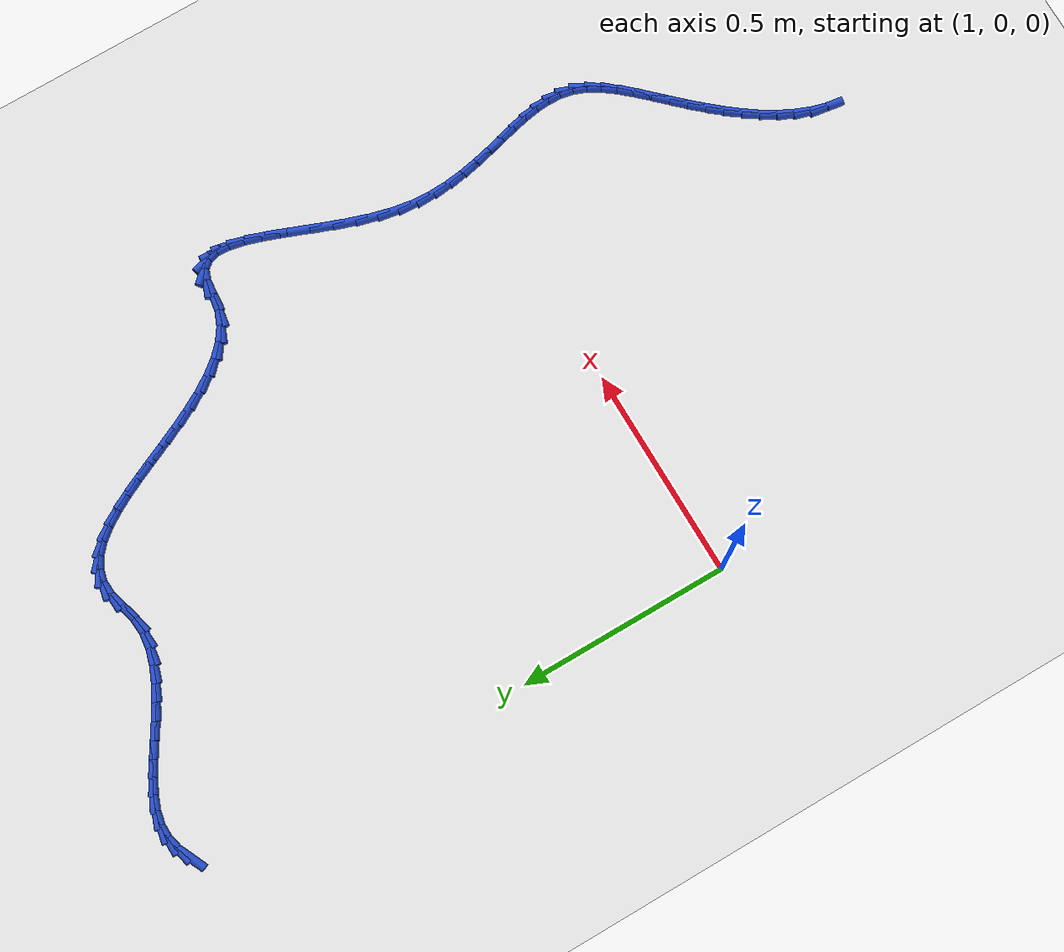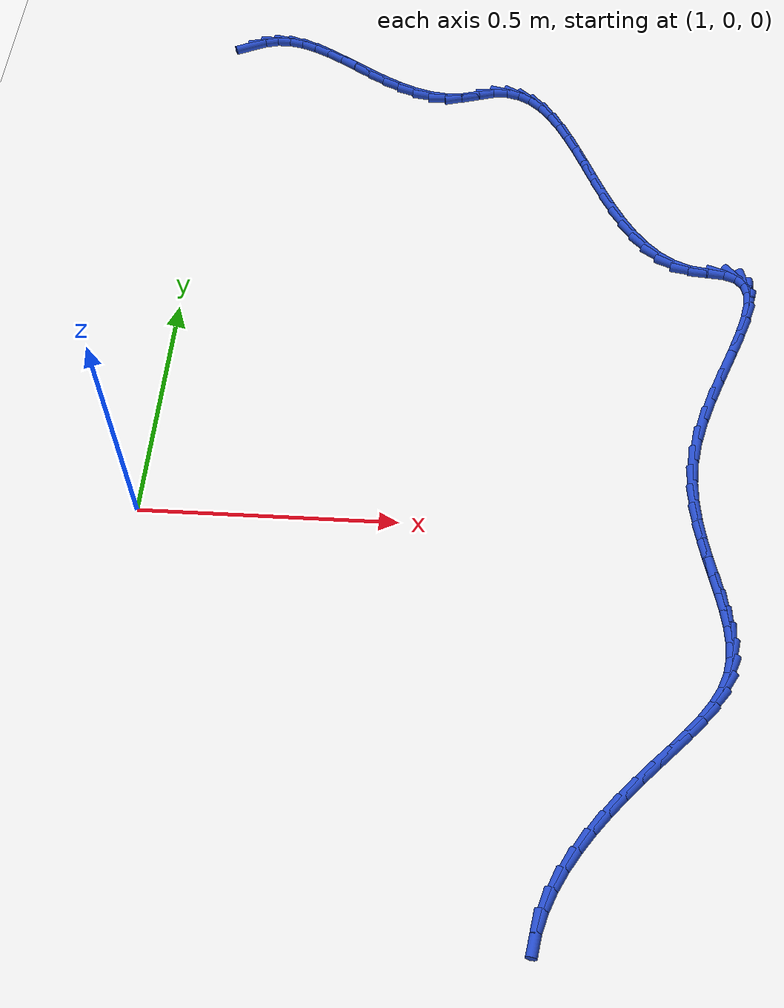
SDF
<sdf version="1.6">
 <world name="default">
  <model name="ground_plane">
   <static>1</static>
   <link name="link">
    <collision name="collision">
     <geometry><plane><normal>0 0 1</normal><size>100 100</size></plane></geometry>
     <surface><friction><ode><mu>100</mu><mu2>50</mu2></ode></friction></surface>
    </collision>
    <visual name="visual">
     <cast_shadows>0</cast_shadows>
     <geometry><plane><normal>0 0 1</normal><size>100 100</size></plane></geometry>
     <material>
      <script><uri>file://media/materials/scripts/gazebo.material</uri><name>Gazebo/WhiteGlow</name></script>
     </material>
    </visual>
   </link>
  </model>
  <model name="line">
   <link name="link_52">
    <pose>1.0448844272359366 1.2996021910996431 0.01 0 1.57 0.429805047557264</pose>
    <collision name="collision">
     <geometry><cylinder><radius>0.01</radius><length>0.08</length></cylinder></geometry>
    </collision>
    <visual name="visual">
     <material>
      <script><name>Gazebo/Blue</name><uri>file://media/materials/scripts/gazebo.material</uri></script>
     </material>
     <geometry><cylinder><radius>0.01</radius><length>0.08</length></cylinder></geometry>
    </visual>
   </link>
   <link name="link_53">
    <pose>1.0741562509220632 1.3130199585511995 0.01 0 1.57 0.23510998479612377</pose>
    <collision name="collision">
     <geometry><cylinder><radius>0.01</radius><length>0.08</length></cylinder></geometry>
    </collision>
    <visual name="visual">
     <material>
      <script><name>Gazebo/Blue</name><uri>file://media/materials/scripts/gazebo.material</uri></script>
     </material>
     <geometry><cylinder><radius>0.01</radius><length>0.08</length></cylinder></geometry>
    </visual>
   </link>
   <link name="link_54">
    <pose>1.1038272987754294 1.3201273612443578 0.01 0 1.57 0.00893521651556636</pose>
    <collision name="collision">
     <geometry><cylinder><radius>0.01</radius><length>0.08</length></cylinder></geometry>
    </collision>
    <visual name="visual">
     <material>
      <script><name>Gazebo/Blue</name><uri>file://media/materials/scripts/gazebo.material</uri></script>
     </material>
     <geometry><cylinder><radius>0.01</radius><length>0.08</length></cylinder></geometry>
    </visual>
   </link>
   <link name="link_55">
    <pose>1.134230710025504 1.3203990295365537 0.01 0 1.57 -0.20590039947856606</pose>
    <collision name="collision">
     <geometry><cylinder><radius>0.01</radius><length>0.08</length></cylinder></geometry>
    </collision>
    <visual name="visual">
     <material>
      <script><name>Gazebo/Blue</name><uri>file://media/materials/scripts/gazebo.material</uri></script>
     </material>
     <geometry><cylinder><radius>0.01</radius><length>0.08</length></cylinder></geometry>
    </visual>
   </link>
   <link name="link_56">
    <pose>1.165576664864631 1.3138521034420758 0.01 0 1.57 -0.36217149226945927</pose>
    <collision name="collision">
     <geometry><cylinder><radius>0.01</radius><length>0.08</length></cylinder></geometry>
    </collision>
    <visual name="visual">
     <material>
      <script><name>Gazebo/Blue</name><uri>file://media/materials/scripts/gazebo.material</uri></script>
     </material>
     <geometry><cylinder><radius>0.01</radius><length>0.08</length></cylinder></geometry>
    </visual>
   </link>
   <link name="link_57">
    <pose>1.197818688309911 1.301636115634664 0.01 0 1.57 -0.46519427115432604</pose>
    <collision name="collision">
     <geometry><cylinder><radius>0.01</radius><length>0.08</length></cylinder></geometry>
    </collision>
    <visual name="visual">
     <material>
      <script><name>Gazebo/Blue</name><uri>file://media/materials/scripts/gazebo.material</uri></script>
     </material>
     <geometry><cylinder><radius>0.01</radius><length>0.08</length></cylinder></geometry>
    </visual>
   </link>
   <link name="link_58">
    <pose>1.230878163191035 1.2850424138792378 0.01 0 1.57 -0.5272879270392726</pose>
    <collision name="collision">
     <geometry><cylinder><radius>0.01</radius><length>0.08</length></cylinder></geometry>
    </collision>
    <visual name="visual">
     <material>
      <script><name>Gazebo/Blue</name><uri>file://media/materials/scripts/gazebo.material</uri></script>
     </material>
     <geometry><cylinder><radius>0.01</radius><length>0.08</length></cylinder></geometry>
    </visual>
   </link>
   <link name="link_59">
    <pose>1.2646764723376946 1.2653623459407153 0.01 0 1.57 -0.5573150228196627</pose>
    <collision name="collision">
     <geometry><cylinder><radius>0.01</radius><length>0.08</length></cylinder></geometry>
    </collision>
    <visual name="visual">
     <material>
      <script><name>Gazebo/Blue</name><uri>file://media/materials/scripts/gazebo.material</uri></script>
     </material>
     <geometry><cylinder><radius>0.01</radius><length>0.08</length></cylinder></geometry>
    </visual>
   </link>
   <link name="link_60">
    <pose>1.299134998579582 1.2438872595840178 0.01 0 1.57 -0.5602123364508486</pose>
    <collision name="collision">
     <geometry><cylinder><radius>0.01</radius><length>0.08</length></cylinder></geometry>
    </collision>
    <visual name="visual">
     <material>
      <script><name>Gazebo/Blue</name><uri>file://media/materials/scripts/gazebo.material</uri></script>
     </material>
     <geometry><cylinder><radius>0.01</radius><length>0.08</length></cylinder></geometry>
    </visual>
   </link>
   <link name="link_61">
    <pose>1.3341751247463887 1.221908502574063 0.01 0 1.57 -0.5376264756287165</pose>
    <collision name="collision">
     <geometry><cylinder><radius>0.01</radius><length>0.08</length></cylinder></geometry>
    </collision>
    <visual name="visual">
     <material>
      <script><name>Gazebo/Blue</name><uri>file://media/materials/scripts/gazebo.material</uri></script>
     </material>
     <geometry><cylinder><radius>0.01</radius><length>0.08</length></cylinder></geometry>
    </visual>
   </link>
   <link name="link_62">
    <pose>1.3697182336678062 1.2007174226757715 0.01 0 1.57 -0.4884279258981313</pose>
    <collision name="collision">
     <geometry><cylinder><radius>0.01</radius><length>0.08</length></cylinder></geometry>
    </collision>
    <visual name="visual">
     <material>
      <script><name>Gazebo/Blue</name><uri>file://media/materials/scripts/gazebo.material</uri></script>
     </material>
     <geometry><cylinder><radius>0.01</radius><length>0.08</length></cylinder></geometry>
    </visual>
   </link>
   <link name="link_63">
    <pose>1.4056857081735268 1.181605367654062 0.01 0 1.57 -0.409045825958524</pose>
    <collision name="collision">
     <geometry><cylinder><radius>0.01</radius><length>0.08</length></cylinder></geometry>
    </collision>
    <visual name="visual">
     <material>
      <script><name>Gazebo/Blue</name><uri>file://media/materials/scripts/gazebo.material</uri></script>
     </material>
     <geometry><cylinder><radius>0.01</radius><length>0.08</length></cylinder></geometry>
    </visual>
   </link>
   <link name="link_64">
    <pose>1.4419989310932413 1.1658636852738549 0.01 0 1.57 -0.29410952521227995</pose>
    <collision name="collision">
     <geometry><cylinder><radius>0.01</radius><length>0.08</length></cylinder></geometry>
    </collision>
    <visual name="visual">
     <material>
      <script><name>Gazebo/Blue</name><uri>file://media/materials/scripts/gazebo.material</uri></script>
     </material>
     <geometry><cylinder><radius>0.01</radius><length>0.08</length></cylinder></geometry>
    </visual>
   </link>
   <link name="link_65">
    <pose>1.478579285256642 1.1547837233000688 0.01 0 1.57 -0.13854247090549057</pose>
    <collision name="collision">
     <geometry><cylinder><radius>0.01</radius><length>0.08</length></cylinder></geometry>
    </collision>
    <visual name="visual">
     <material>
      <script><name>Gazebo/Blue</name><uri>file://media/materials/scripts/gazebo.material</uri></script>
     </material>
     <geometry><cylinder><radius>0.01</radius><length>0.08</length></cylinder></geometry>
    </visual>
   </link>
   <link name="link_66">
    <pose>1.5153481534934206 1.1496568294976233 0.01 0 1.57 0.0573554902370289</pose>
    <collision name="collision">
     <geometry><cylinder><radius>0.01</radius><length>0.08</length></cylinder></geometry>
    </collision>
    <visual name="visual">
     <material>
      <script><name>Gazebo/Blue</name><uri>file://media/materials/scripts/gazebo.material</uri></script>
     </material>
     <geometry><cylinder><radius>0.01</radius><length>0.08</length></cylinder></geometry>
    </visual>
   </link>
   <link name="link_67">
    <pose>1.5522269186332682 1.151774351631438 0.01 0 1.57 0.2560856816084314</pose>
    <collision name="collision">
     <geometry><cylinder><radius>0.01</radius><length>0.08</length></cylinder></geometry>
    </collision>
    <visual name="visual">
     <material>
      <script><name>Gazebo/Blue</name><uri>file://media/materials/scripts/gazebo.material</uri></script>
     </material>
     <geometry><cylinder><radius>0.01</radius><length>0.08</length></cylinder></geometry>
    </visual>
   </link>
   <link name="link_68">
    <pose>1.588977768799128 1.161396994147292 0.01 0 1.57 0.27451396121899535</pose>
    <collision name="collision">
     <geometry><cylinder><radius>0.01</radius><length>0.08</length></cylinder></geometry>
    </collision>
    <visual name="visual">
     <material>
      <script><name>Gazebo/Blue</name><uri>file://media/materials/scripts/gazebo.material</uri></script>
     </material>
     <geometry><cylinder><radius>0.01</radius><length>0.08</length></cylinder></geometry>
    </visual>
   </link>
   <link name="link_69">
    <pose>1.6242096336828566 1.1713191313148255 0.01 0 1.57 0.056286231660913164</pose>
    <collision name="collision">
     <geometry><cylinder><radius>0.01</radius><length>0.08</length></cylinder></geometry>
    </collision>
    <visual name="visual">
     <material>
      <script><name>Gazebo/Blue</name><uri>file://media/materials/scripts/gazebo.material</uri></script>
     </material>
     <geometry><cylinder><radius>0.01</radius><length>0.08</length></cylinder></geometry>
    </visual>
   </link>
   <link name="link_70">
    <pose>1.6564383818019035 1.1731350842337112 0.01 0 1.57 -0.2365649904011344</pose>
    <collision name="collision">
     <geometry><cylinder><radius>0.01</radius><length>0.08</length></cylinder></geometry>
    </collision>
    <visual name="visual">
     <material>
      <script><name>Gazebo/Blue</name><uri>file://media/materials/scripts/gazebo.material</uri></script>
     </material>
     <geometry><cylinder><radius>0.01</radius><length>0.08</length></cylinder></geometry>
    </visual>
   </link>
   <link name="link_71">
    <pose>1.6856986495958262 1.1660810473512058 0.01 0 1.57 -0.5103684415493414</pose>
    <collision name="collision">
     <geometry><cylinder><radius>0.01</radius><length>0.08</length></cylinder></geometry>
    </collision>
    <visual name="visual">
     <material>
      <script><name>Gazebo/Blue</name><uri>file://media/materials/scripts/gazebo.material</uri></script>
     </material>
     <geometry><cylinder><radius>0.01</radius><length>0.08</length></cylinder></geometry>
    </visual>
   </link>
   <link name="link_72">
    <pose>1.7123735418426467 1.1511473080356978 0.01 0 1.57 -0.7282313867077387</pose>
    <collision name="collision">
     <geometry><cylinder><radius>0.01</radius><length>0.08</length></cylinder></geometry>
    </collision>
    <visual name="visual">
     <material>
      <script><name>Gazebo/Blue</name><uri>file://media/materials/scripts/gazebo.material</uri></script>
     </material>
     <geometry><cylinder><radius>0.01</radius><length>0.08</length></cylinder></geometry>
    </visual>
   </link>
   <link name="link_73">
    <pose>1.736846163320386 1.129324153655576 0.01 0 1.57 -0.8856810301193223</pose>
    <collision name="collision">
     <geometry><cylinder><radius>0.01</radius><length>0.08</length></cylinder></geometry>
    </collision>
    <visual name="visual">
     <material>
      <script><name>Gazebo/Blue</name><uri>file://media/materials/scripts/gazebo.material</uri></script>
     </material>
     <geometry><cylinder><radius>0.01</radius><length>0.08</length></cylinder></geometry>
    </visual>
   </link>
   <link name="link_74">
    <pose>1.7594996188070655 1.1016018715792273 0.01 0 1.57 -0.9942667689347339</pose>
    <collision name="collision">
     <geometry><cylinder><radius>0.01</radius><length>0.08</length></cylinder></geometry>
    </collision>
    <visual name="visual">
     <material>
      <script><name>Gazebo/Blue</name><uri>file://media/materials/scripts/gazebo.material</uri></script>
     </material>
     <geometry><cylinder><radius>0.01</radius><length>0.08</length></cylinder></geometry>
    </visual>
   </link>
   <link name="link_75">
    <pose>1.7807170130807057 1.0689707491750409 0.01 0 1.57 -1.0666492493274393</pose>
    <collision name="collision">
     <geometry><cylinder><radius>0.01</radius><length>0.08</length></cylinder></geometry>
    </collision>
    <visual name="visual">
     <material>
      <script><name>Gazebo/Blue</name><uri>file://media/materials/scripts/gazebo.material</uri></script>
     </material>
     <geometry><cylinder><radius>0.01</radius><length>0.08</length></cylinder></geometry>
    </visual>
   </link>
   <link name="link_76">
    <pose>1.800881450919329 1.0324210738114052 0.01 0 1.57 -1.1121132912019904</pose>
    <collision name="collision">
     <geometry><cylinder><radius>0.01</radius><length>0.08</length></cylinder></geometry>
    </collision>
    <visual name="visual">
     <material>
      <script><name>Gazebo/Blue</name><uri>file://media/materials/scripts/gazebo.material</uri></script>
     </material>
     <geometry><cylinder><radius>0.01</radius><length>0.08</length></cylinder></geometry>
    </visual>
   </link>
   <link name="link_77">
    <pose>1.8203760371009559 0.9929431328567068 0.01 0 1.57 -1.136542934846392</pose>
    <collision name="collision">
     <geometry><cylinder><radius>0.01</radius><length>0.08</length></cylinder></geometry>
    </collision>
    <visual name="visual">
     <material>
      <script><name>Gazebo/Blue</name><uri>file://media/materials/scripts/gazebo.material</uri></script>
     </material>
     <geometry><cylinder><radius>0.01</radius><length>0.08</length></cylinder></geometry>
    </visual>
   </link>
   <link name="link_78">
    <pose>1.8395838764036077 0.9515272136793356 0.01 0 1.57 -1.143229990157646</pose>
    <collision name="collision">
     <geometry><cylinder><radius>0.01</radius><length>0.08</length></cylinder></geometry>
    </collision>
    <visual name="visual">
     <material>
      <script><name>Gazebo/Blue</name><uri>file://media/materials/scripts/gazebo.material</uri></script>
     </material>
     <geometry><cylinder><radius>0.01</radius><length>0.08</length></cylinder></geometry>
    </visual>
   </link>
   <link name="link_79">
    <pose>1.8588880736053057 0.9091636036476782 0.01 0 1.57 -1.133512496936239</pose>
    <collision name="collision">
     <geometry><cylinder><radius>0.01</radius><length>0.08</length></cylinder></geometry>
    </collision>
    <visual name="visual">
     <material>
      <script><name>Gazebo/Blue</name><uri>file://media/materials/scripts/gazebo.material</uri></script>
     </material>
     <geometry><cylinder><radius>0.01</radius><length>0.08</length></cylinder></geometry>
    </visual>
   </link>
   <link name="link_80">
    <pose>1.8786717334840712 0.8668425901301244 0.01 0 1.57 -1.1071068176928034</pose>
    <collision name="collision">
     <geometry><cylinder><radius>0.01</radius><length>0.08</length></cylinder></geometry>
    </collision>
    <visual name="visual">
     <material>
      <script><name>Gazebo/Blue</name><uri>file://media/materials/scripts/gazebo.material</uri></script>
     </material>
     <geometry><cylinder><radius>0.01</radius><length>0.08</length></cylinder></geometry>
    </visual>
   </link>
   <link name="link_81">
    <pose>1.899317960817926 0.8255544604950612 0.01 0 1.57 -1.0621804570360798</pose>
    <collision name="collision">
     <geometry><cylinder><radius>0.01</radius><length>0.08</length></cylinder></geometry>
    </collision>
    <visual name="visual">
     <material>
      <script><name>Gazebo/Blue</name><uri>file://media/materials/scripts/gazebo.material</uri></script>
     </material>
     <geometry><cylinder><radius>0.01</radius><length>0.08</length></cylinder></geometry>
    </visual>
   </link>
   <link name="link_82">
    <pose>1.9212098603848902 0.7862895021108772 0.01 0 1.57 -0.9952514963757877</pose>
    <collision name="collision">
     <geometry><cylinder><radius>0.01</radius><length>0.08</length></cylinder></geometry>
    </collision>
    <visual name="visual">
     <material>
      <script><name>Gazebo/Blue</name><uri>file://media/materials/scripts/gazebo.material</uri></script>
     </material>
     <geometry><cylinder><radius>0.01</radius><length>0.08</length></cylinder></geometry>
    </visual>
   </link>
   <link name="link_83">
    <pose>1.9447305369629853 0.7500380023459601 0.01 0 1.57 -0.901098544550212</pose>
    <collision name="collision">
     <geometry><cylinder><radius>0.01</radius><length>0.08</length></cylinder></geometry>
    </collision>
    <visual name="visual">
     <material>
      <script><name>Gazebo/Blue</name><uri>file://media/materials/scripts/gazebo.material</uri></script>
     </material>
     <geometry><cylinder><radius>0.01</radius><length>0.08</length></cylinder></geometry>
    </visual>
   </link>
   <link name="link_84">
    <pose>1.9702630953302323 0.7177902485686987 0.01 0 1.57 -0.7731876600633841</pose>
    <collision name="collision">
     <geometry><cylinder><radius>0.01</radius><length>0.08</length></cylinder></geometry>
    </collision>
    <visual name="visual">
     <material>
      <script><name>Gazebo/Blue</name><uri>file://media/materials/scripts/gazebo.material</uri></script>
     </material>
     <geometry><cylinder><radius>0.01</radius><length>0.08</length></cylinder></geometry>
    </visual>
   </link>
   <link name="link_85">
    <pose>1.9981906402646539 0.6905365281474807 0.01 0 1.57 -0.6058011317473849</pose>
    <collision name="collision">
     <geometry><cylinder><radius>0.01</radius><length>0.08</length></cylinder></geometry>
    </collision>
    <visual name="visual">
     <material>
      <script><name>Gazebo/Blue</name><uri>file://media/materials/scripts/gazebo.material</uri></script>
     </material>
     <geometry><cylinder><radius>0.01</radius><length>0.08</length></cylinder></geometry>
    </visual>
   </link>
   <link name="link_86">
    <pose>2.0288962765442697 0.6692671284506948 0.01 0 1.57 -0.39940177573918967</pose>
    <collision name="collision">
     <geometry><cylinder><radius>0.01</radius><length>0.08</length></cylinder></geometry>
    </collision>
    <visual name="visual">
     <material>
      <script><name>Gazebo/Blue</name><uri>file://media/materials/scripts/gazebo.material</uri></script>
     </material>
     <geometry><cylinder><radius>0.01</radius><length>0.08</length></cylinder></geometry>
    </visual>
   </link>
   <link name="link_87">
    <pose>2.0627631089471015 0.6549723368467284 0.01 0 1.57 -0.17007441226633815</pose>
    <collision name="collision">
     <geometry><cylinder><radius>0.01</radius><length>0.08</length></cylinder></geometry>
    </collision>
    <visual name="visual">
     <material>
      <script><name>Gazebo/Blue</name><uri>file://media/materials/scripts/gazebo.material</uri></script>
     </material>
     <geometry><cylinder><radius>0.01</radius><length>0.08</length></cylinder></geometry>
    </visual>
   </link>
   <link name="link_88">
    <pose>2.100101372638777 0.6485601088254555 0.01 0 1.57 -0.08676398623313394</pose>
    <collision name="collision">
     <geometry><cylinder><radius>0.01</radius><length>0.08</length></cylinder></geometry>
    </collision>
    <visual name="visual">
     <material>
      <script><name>Gazebo/Blue</name><uri>file://media/materials/scripts/gazebo.material</uri></script>
     </material>
     <geometry><cylinder><radius>0.01</radius><length>0.08</length></cylinder></geometry>
    </visual>
   </link>
   <link name="link_89">
    <pose>2.136327761023231 0.6454090519504484 0.01 0 1.57 -0.36391834789815797</pose>
    <collision name="collision">
     <geometry><cylinder><radius>0.01</radius><length>0.08</length></cylinder></geometry>
    </collision>
    <visual name="visual">
     <material>
      <script><name>Gazebo/Blue</name><uri>file://media/materials/scripts/gazebo.material</uri></script>
     </material>
     <geometry><cylinder><radius>0.01</radius><length>0.08</length></cylinder></geometry>
    </visual>
   </link>
   <link name="link_90">
    <pose>2.162348594249542 0.635498159497639 0.01 0 1.57 -0.8463129193081445</pose>
    <collision name="collision">
     <geometry><cylinder><radius>0.01</radius><length>0.08</length></cylinder></geometry>
    </collision>
    <visual name="visual">
     <material>
      <script><name>Gazebo/Blue</name><uri>file://media/materials/scripts/gazebo.material</uri></script>
     </material>
     <geometry><cylinder><radius>0.01</radius><length>0.08</length></cylinder></geometry>
    </visual>
   </link>
   <link name="link_91">
    <pose>2.1778983416320465 0.617928449398913 0.01 0 1.57 -1.3113086702979015</pose>
    <collision name="collision">
     <geometry><cylinder><radius>0.01</radius><length>0.08</length></cylinder></geometry>
    </collision>
    <visual name="visual">
     <material>
      <script><name>Gazebo/Blue</name><uri>file://media/materials/scripts/gazebo.material</uri></script>
     </material>
     <geometry><cylinder><radius>0.01</radius><length>0.08</length></cylinder></geometry>
    </visual>
   </link>
   <link name="link_92">
    <pose>2.184374965463743 0.5935319064398422 0.01 0 1.57 1.5313800111826732</pose>
    <collision name="collision">
     <geometry><cylinder><radius>0.01</radius><length>0.08</length></cylinder></geometry>
    </collision>
    <visual name="visual">
     <material>
      <script><name>Gazebo/Blue</name><uri>file://media/materials/scripts/gazebo.material</uri></script>
     </material>
     <geometry><cylinder><radius>0.01</radius><length>0.08</length></cylinder></geometry>
    </visual>
   </link>
   <link name="link_93">
    <pose>2.1831764280376253 0.563140515405999 0.01 0 1.57 1.3635524640347216</pose>
    <collision name="collision">
     <geometry><cylinder><radius>0.01</radius><length>0.08</length></cylinder></geometry>
    </collision>
    <visual name="visual">
     <material>
      <script><name>Gazebo/Blue</name><uri>file://media/materials/scripts/gazebo.material</uri></script>
     </material>
     <geometry><cylinder><radius>0.01</radius><length>0.08</length></cylinder></geometry>
    </visual>
   </link>
   <link name="link_94">
    <pose>2.17570069164669 0.5275862610829544 0.01 0 1.57 1.270406099410097</pose>
    <collision name="collision">
     <geometry><cylinder><radius>0.01</radius><length>0.08</length></cylinder></geometry>
    </collision>
    <visual name="visual">
     <material>
      <script><name>Gazebo/Blue</name><uri>file://media/materials/scripts/gazebo.material</uri></script>
     </material>
     <geometry><cylinder><radius>0.01</radius><length>0.08</length></cylinder></geometry>
    </visual>
   </link>
   <link name="link_95">
    <pose>2.1633457185839338 0.4877011282562819 0.01 0 1.57 1.2207995499956517</pose>
    <collision name="collision">
     <geometry><cylinder><radius>0.01</radius><length>0.08</length></cylinder></geometry>
    </collision>
    <visual name="visual">
     <material>
      <script><name>Gazebo/Blue</name><uri>file://media/materials/scripts/gazebo.material</uri></script>
     </material>
     <geometry><cylinder><radius>0.01</radius><length>0.08</length></cylinder></geometry>
    </visual>
   </link>
   <link name="link_96">
    <pose>2.147509471142352 0.44431710171155203 0.01 0 1.57 1.1997001630612982</pose>
    <collision name="collision">
     <geometry><cylinder><radius>0.01</radius><length>0.08</length></cylinder></geometry>
    </collision>
    <visual name="visual">
     <material>
      <script><name>Gazebo/Blue</name><uri>file://media/materials/scripts/gazebo.material</uri></script>
     </material>
     <geometry><cylinder><radius>0.01</radius><length>0.08</length></cylinder></geometry>
    </visual>
   </link>
   <link name="link_97">
    <pose>2.1295899116149415 0.3982661662343381 0.01 0 1.57 1.200220151817474</pose>
    <collision name="collision">
     <geometry><cylinder><radius>0.01</radius><length>0.08</length></cylinder></geometry>
    </collision>
    <visual name="visual">
     <material>
      <script><name>Gazebo/Blue</name><uri>file://media/materials/scripts/gazebo.material</uri></script>
     </material>
     <geometry><cylinder><radius>0.01</radius><length>0.08</length></cylinder></geometry>
    </visual>
   </link>
   <link name="link_98">
    <pose>2.1109850022946977 0.35038030661021136 0.01 0 1.57 1.2199574219983988</pose>
    <collision name="collision">
     <geometry><cylinder><radius>0.01</radius><length>0.08</length></cylinder></geometry>
    </collision>
    <visual name="visual">
     <material>
      <script><name>Gazebo/Blue</name><uri>file://media/materials/scripts/gazebo.material</uri></script>
     </material>
     <geometry><cylinder><radius>0.01</radius><length>0.08</length></cylinder></geometry>
    </visual>
   </link>
   <link name="link_99">
    <pose>2.093092705474617 0.30149150762474336 0.01 0 1.57 1.2595668442967862</pose>
    <collision name="collision">
     <geometry><cylinder><radius>0.01</radius><length>0.08</length></cylinder></geometry>
    </collision>
    <visual name="visual">
     <material>
      <script><name>Gazebo/Blue</name><uri>file://media/materials/scripts/gazebo.material</uri></script>
     </material>
     <geometry><cylinder><radius>0.01</radius><length>0.08</length></cylinder></geometry>
    </visual>
   </link>
   <link name="link_100">
    <pose>2.0773109834476955 0.2524317540635074 0.01 0 1.57 1.3224465058464312</pose>
    <collision name="collision">
     <geometry><cylinder><radius>0.01</radius><length>0.08</length></cylinder></geometry>
    </collision>
    <visual name="visual">
     <material>
      <script><name>Gazebo/Blue</name><uri>file://media/materials/scripts/gazebo.material</uri></script>
     </material>
     <geometry><cylinder><radius>0.01</radius><length>0.08</length></cylinder></geometry>
    </visual>
   </link>
   <link name="link_101">
    <pose>2.0650377985069284 0.20403303071207396 0.01 0 1.57 1.413974672898532</pose>
    <collision name="collision">
     <geometry><cylinder><radius>0.01</radius><length>0.08</length></cylinder></geometry>
    </collision>
    <visual name="visual">
     <material>
      <script><name>Gazebo/Blue</name><uri>file://media/materials/scripts/gazebo.material</uri></script>
     </material>
     <geometry><cylinder><radius>0.01</radius><length>0.08</length></cylinder></geometry>
    </visual>
   </link>
   <link name="link_102">
    <pose>2.057617683832936 0.15710592068556725 0.01 0 1.57 1.5186898717853423</pose>
    <collision name="collision">
     <geometry><cylinder><radius>0.01</radius><length>0.08</length></cylinder></geometry>
    </collision>
    <visual name="visual">
     <material>
      <script><name>Gazebo/Blue</name><uri>file://media/materials/scripts/gazebo.material</uri></script>
     </material>
     <geometry><cylinder><radius>0.01</radius><length>0.08</length></cylinder></geometry>
    </visual>
   </link>
   <link name="link_103">
    <pose>2.0552656922893964 0.11200858023953986 0.01 0 1.57 -1.5280380355078849</pose>
    <collision name="collision">
     <geometry><cylinder><radius>0.01</radius><length>0.08</length></cylinder></geometry>
    </collision>
    <visual name="visual">
     <material>
      <script><name>Gazebo/Blue</name><uri>file://media/materials/scripts/gazebo.material</uri></script>
     </material>
     <geometry><cylinder><radius>0.01</radius><length>0.08</length></cylinder></geometry>
    </visual>
   </link>
   <link name="link_104">
    <pose>2.0571199997787764 0.06866780967372066 0.01 0 1.57 -1.4477041576035494</pose>
    <collision name="collision">
     <geometry><cylinder><radius>0.01</radius><length>0.08</length></cylinder></geometry>
    </collision>
    <visual name="visual">
     <material>
      <script><name>Gazebo/Blue</name><uri>file://media/materials/scripts/gazebo.material</uri></script>
     </material>
     <geometry><cylinder><radius>0.01</radius><length>0.08</length></cylinder></geometry>
    </visual>
   </link>
   <link name="link_105">
    <pose>2.0622758812644957 0.026993224803223494 0.01 0 1.57 -1.3846243704549204</pose>
    <collision name="collision">
     <geometry><cylinder><radius>0.01</radius><length>0.08</length></cylinder></geometry>
    </collision>
    <visual name="visual">
     <material>
      <script><name>Gazebo/Blue</name><uri>file://media/materials/scripts/gazebo.material</uri></script>
     </material>
     <geometry><cylinder><radius>0.01</radius><length>0.08</length></cylinder></geometry>
    </visual>
   </link>
   <link name="link_106">
    <pose>2.069828611709974 -0.013105558556835623 0.01 0 1.57 -1.3407032527517386</pose>
    <collision name="collision">
     <geometry><cylinder><radius>0.01</radius><length>0.08</length></cylinder></geometry>
    </collision>
    <visual name="visual">
     <material>
      <script><name>Gazebo/Blue</name><uri>file://media/materials/scripts/gazebo.material</uri></script>
     </material>
     <geometry><cylinder><radius>0.01</radius><length>0.08</length></cylinder></geometry>
    </visual>
   </link>
   <link name="link_107">
    <pose>2.07887346607863 -0.05171892459134222 0.01 0 1.57 -1.3175488682389356</pose>
    <collision name="collision">
     <geometry><cylinder><radius>0.01</radius><length>0.08</length></cylinder></geometry>
    </collision>
    <visual name="visual">
     <material>
      <script><name>Gazebo/Blue</name><uri>file://media/materials/scripts/gazebo.material</uri></script>
     </material>
     <geometry><cylinder><radius>0.01</radius><length>0.08</length></cylinder></geometry>
    </visual>
   </link>
   <link name="link_108">
    <pose>2.0885057193338827 -0.0889372574851818 0.01 0 1.57 -1.31701860037854</pose>
    <collision name="collision">
     <geometry><cylinder><radius>0.01</radius><length>0.08</length></cylinder></geometry>
    </collision>
    <visual name="visual">
     <material>
      <script><name>Gazebo/Blue</name><uri>file://media/materials/scripts/gazebo.material</uri></script>
     </material>
     <geometry><cylinder><radius>0.01</radius><length>0.08</length></cylinder></geometry>
    </visual>
   </link>
   <link name="link_109">
    <pose>2.097820646439151 -0.12485094142323844 0.01 0 1.57 -1.341664296343314</pose>
    <collision name="collision">
     <geometry><cylinder><radius>0.01</radius><length>0.08</length></cylinder></geometry>
    </collision>
    <visual name="visual">
     <material>
      <script><name>Gazebo/Blue</name><uri>file://media/materials/scripts/gazebo.material</uri></script>
     </material>
     <geometry><cylinder><radius>0.01</radius><length>0.08</length></cylinder></geometry>
    </visual>
   </link>
   <link name="link_110">
    <pose>2.105913522357855 -0.1595503605903981 0.01 0 1.57 -1.3949399940498004</pose>
    <collision name="collision">
     <geometry><cylinder><radius>0.01</radius><length>0.08</length></cylinder></geometry>
    </collision>
    <visual name="visual">
     <material>
      <script><name>Gazebo/Blue</name><uri>file://media/materials/scripts/gazebo.material</uri></script>
     </material>
     <geometry><cylinder><radius>0.01</radius><length>0.08</length></cylinder></geometry>
    </visual>
   </link>
   <link name="link_111">
    <pose>2.111879622053412 -0.19312589917154493 0.01 0 1.57 -1.4808609102739394</pose>
    <collision name="collision">
     <geometry><cylinder><radius>0.01</radius><length>0.08</length></cylinder></geometry>
    </collision>
    <visual name="visual">
     <material>
      <script><name>Gazebo/Blue</name><uri>file://media/materials/scripts/gazebo.material</uri></script>
     </material>
     <geometry><cylinder><radius>0.01</radius><length>0.08</length></cylinder></geometry>
    </visual>
   </link>
   <link name="link_112">
    <pose>2.1148142204892424 -0.2256679413515648 0.01 0 1.57 1.539108779333159</pose>
    <collision name="collision">
     <geometry><cylinder><radius>0.01</radius><length>0.08</length></cylinder></geometry>
    </collision>
    <visual name="visual">
     <material>
      <script><name>Gazebo/Blue</name><uri>file://media/materials/scripts/gazebo.material</uri></script>
     </material>
     <geometry><cylinder><radius>0.01</radius><length>0.08</length></cylinder></geometry>
    </visual>
   </link>
   <link name="link_113">
    <pose>2.113812592628765 -0.2572668713153419 0.01 0 1.57 1.383009241567512</pose>
    <collision name="collision">
     <geometry><cylinder><radius>0.01</radius><length>0.08</length></cylinder></geometry>
    </collision>
    <visual name="visual">
     <material>
      <script><name>Gazebo/Blue</name><uri>file://media/materials/scripts/gazebo.material</uri></script>
     </material>
     <geometry><cylinder><radius>0.01</radius><length>0.08</length></cylinder></geometry>
    </visual>
   </link>
   <link name="link_114">
    <pose>2.1079700134353985 -0.28801307324776204 0.01 0 1.57 1.2030797857507047</pose>
    <collision name="collision">
     <geometry><cylinder><radius>0.01</radius><length>0.08</length></cylinder></geometry>
    </collision>
    <visual name="visual">
     <material>
      <script><name>Gazebo/Blue</name><uri>file://media/materials/scripts/gazebo.material</uri></script>
     </material>
     <geometry><cylinder><radius>0.01</radius><length>0.08</length></cylinder></geometry>
    </visual>
   </link>
   <link name="link_115">
    <pose>2.0964179944298627 -0.3179997409419714 0.01 0 1.57 1.0417502753152044</pose>
    <collision name="collision">
     <geometry><cylinder><radius>0.01</radius><length>0.08</length></cylinder></geometry>
    </collision>
    <visual name="visual">
     <material>
      <script><name>Gazebo/Blue</name><uri>file://media/materials/scripts/gazebo.material</uri></script>
     </material>
     <geometry><cylinder><radius>0.01</radius><length>0.08</length></cylinder></geometry>
    </visual>
   </link>
   <link name="link_116">
    <pose>2.0792334137213793 -0.3473933673667404 0.01 0 1.57 0.9285296731130407</pose>
    <collision name="collision">
     <geometry><cylinder><radius>0.01</radius><length>0.08</length></cylinder></geometry>
    </collision>
    <visual name="visual">
     <material>
      <script><name>Gazebo/Blue</name><uri>file://media/materials/scripts/gazebo.material</uri></script>
     </material>
     <geometry><cylinder><radius>0.01</radius><length>0.08</length></cylinder></geometry>
    </visual>
   </link>
   <link name="link_117">
    <pose>2.057505223901524 -0.3764389168755155 0.01 0 1.57 0.8557895625418201</pose>
    <collision name="collision">
     <geometry><cylinder><radius>0.01</radius><length>0.08</length></cylinder></geometry>
    </collision>
    <visual name="visual">
     <material>
      <script><name>Gazebo/Blue</name><uri>file://media/materials/scripts/gazebo.material</uri></script>
     </material>
     <geometry><cylinder><radius>0.01</radius><length>0.08</length></cylinder></geometry>
    </visual>
   </link>
   <link name="link_118">
    <pose>2.032371975145218 -0.4053851993796614 0.01 0 1.57 0.8154103969055485</pose>
    <collision name="collision">
     <geometry><cylinder><radius>0.01</radius><length>0.08</length></cylinder></geometry>
    </collision>
    <visual name="visual">
     <material>
      <script><name>Gazebo/Blue</name><uri>file://media/materials/scripts/gazebo.material</uri></script>
     </material>
     <geometry><cylinder><radius>0.01</radius><length>0.08</length></cylinder></geometry>
    </visual>
   </link>
   <link name="link_119">
    <pose>2.004972217627379 -0.43448102479054446 0.01 0 1.57 0.8020534754764346</pose>
    <collision name="collision">
     <geometry><cylinder><radius>0.01</radius><length>0.08</length></cylinder></geometry>
    </collision>
    <visual name="visual">
     <material>
      <script><name>Gazebo/Blue</name><uri>file://media/materials/scripts/gazebo.material</uri></script>
     </material>
     <geometry><cylinder><radius>0.01</radius><length>0.08</length></cylinder></geometry>
    </visual>
   </link>
   <link name="link_120">
    <pose>1.9764445015229273 -0.4639752030195309 0.01 0 1.57 0.8113382721984551</pose>
    <collision name="collision">
     <geometry><cylinder><radius>0.01</radius><length>0.08</length></cylinder></geometry>
    </collision>
    <visual name="visual">
     <material>
      <script><name>Gazebo/Blue</name><uri>file://media/materials/scripts/gazebo.material</uri></script>
     </material>
     <geometry><cylinder><radius>0.01</radius><length>0.08</length></cylinder></geometry>
    </visual>
   </link>
   <link name="link_121">
    <pose>1.9478529491179377 -0.49408994474274004 0.01 0 1.57 0.8328014312405166</pose>
    <collision name="collision">
     <geometry><cylinder><radius>0.01</radius><length>0.08</length></cylinder></geometry>
    </collision>
    <visual name="visual">
     <material>
      <script><name>Gazebo/Blue</name><uri>file://media/materials/scripts/gazebo.material</uri></script>
     </material>
     <geometry><cylinder><radius>0.01</radius><length>0.08</length></cylinder></geometry>
    </visual>
   </link>
   <link name="link_122">
    <pose>1.9198374598576915 -0.5248958507584004 0.01 0 1.57 0.8633130704508035</pose>
    <collision name="collision">
     <geometry><cylinder><radius>0.01</radius><length>0.08</length></cylinder></geometry>
    </collision>
    <visual name="visual">
     <material>
      <script><name>Gazebo/Blue</name><uri>file://media/materials/scripts/gazebo.material</uri></script>
     </material>
     <geometry><cylinder><radius>0.01</radius><length>0.08</length></cylinder></geometry>
    </visual>
   </link>
   <link name="link_123">
    <pose>1.8928878538863017 -0.5564098861281953 0.01 0 1.57 0.9036127127639266</pose>
    <collision name="collision">
     <geometry><cylinder><radius>0.01</radius><length>0.08</length></cylinder></geometry>
    </collision>
    <visual name="visual">
     <material>
      <script><name>Gazebo/Blue</name><uri>file://media/materials/scripts/gazebo.material</uri></script>
     </material>
     <geometry><cylinder><radius>0.01</radius><length>0.08</length></cylinder></geometry>
    </visual>
   </link>
   <link name="link_124">
    <pose>1.867493777603774 -0.5886489538206836 0.01 0 1.57 0.9547547132159241</pose>
    <collision name="collision">
     <geometry><cylinder><radius>0.01</radius><length>0.08</length></cylinder></geometry>
    </collision>
    <visual name="visual">
     <material>
      <script><name>Gazebo/Blue</name><uri>file://media/materials/scripts/gazebo.material</uri></script>
     </material>
     <geometry><cylinder><radius>0.01</radius><length>0.08</length></cylinder></geometry>
    </visual>
   </link>
   <link name="link_125">
    <pose>1.844144877410118 -0.6216299568044242 0.01 0 1.57 1.0180435977746203</pose>
    <collision name="collision">
     <geometry><cylinder><radius>0.01</radius><length>0.08</length></cylinder></geometry>
    </collision>
    <visual name="visual">
     <material>
      <script><name>Gazebo/Blue</name><uri>file://media/materials/scripts/gazebo.material</uri></script>
     </material>
     <geometry><cylinder><radius>0.01</radius><length>0.08</length></cylinder></geometry>
    </visual>
   </link>
   <link name="link_126">
    <pose>1.8233307997053398 -0.6553697980479763 0.01 0 1.57 1.0948984013478125</pose>
    <collision name="collision">
     <geometry><cylinder><radius>0.01</radius><length>0.08</length></cylinder></geometry>
    </collision>
    <visual name="visual">
     <material>
      <script><name>Gazebo/Blue</name><uri>file://media/materials/scripts/gazebo.material</uri></script>
     </material>
     <geometry><cylinder><radius>0.01</radius><length>0.08</length></cylinder></geometry>
    </visual>
   </link>
   <link name="link_127">
    <pose>1.805541190889447 -0.6898853805198965 0.01 0 1.57 1.1865793692703386</pose>
    <collision name="collision">
     <geometry><cylinder><radius>0.01</radius><length>0.08</length></cylinder></geometry>
    </collision>
    <visual name="visual">
     <material>
      <script><name>Gazebo/Blue</name><uri>file://media/materials/scripts/gazebo.material</uri></script>
     </material>
     <geometry><cylinder><radius>0.01</radius><length>0.08</length></cylinder></geometry>
    </visual>
   </link>
   <link name="link_128">
    <pose>1.791265697362448 -0.7251936071887444 0.01 0 1.57 1.2937163598619312</pose>
    <collision name="collision">
     <geometry><cylinder><radius>0.01</radius><length>0.08</length></cylinder></geometry>
    </collision>
    <visual name="visual">
     <material>
      <script><name>Gazebo/Blue</name><uri>file://media/materials/scripts/gazebo.material</uri></script>
     </material>
     <geometry><cylinder><radius>0.01</radius><length>0.08</length></cylinder></geometry>
    </visual>
   </link>
   <link name="link_129">
    <pose>1.7809939655243503 -0.7613113810230785 0.01 0 1.57 1.4156466337580609</pose>
    <collision name="collision">
     <geometry><cylinder><radius>0.01</radius><length>0.08</length></cylinder></geometry>
    </collision>
    <visual name="visual">
     <material>
      <script><name>Gazebo/Blue</name><uri>file://media/materials/scripts/gazebo.material</uri></script>
     </material>
     <geometry><cylinder><radius>0.01</radius><length>0.08</length></cylinder></geometry>
    </visual>
   </link>
  </model>
 </world>
</sdf>
